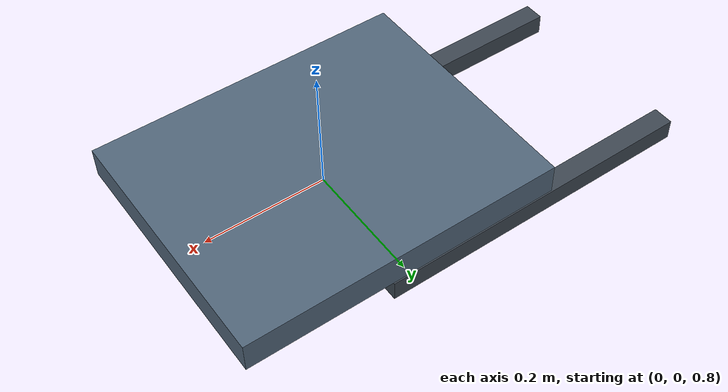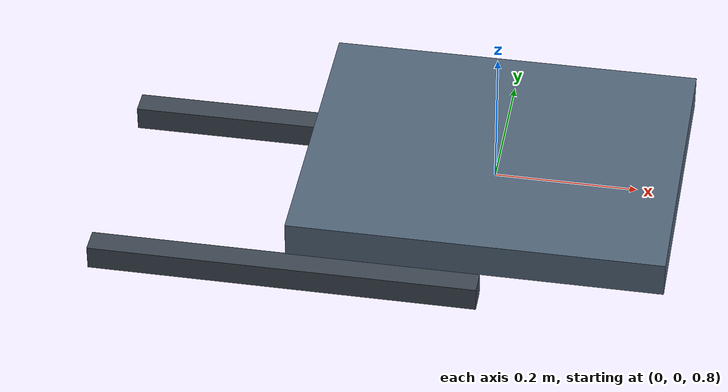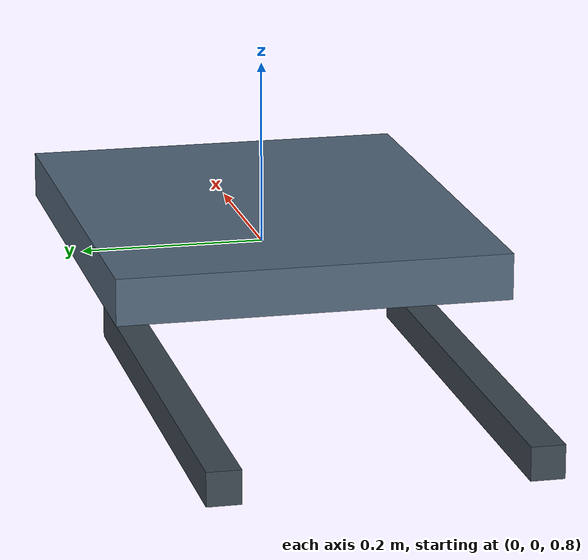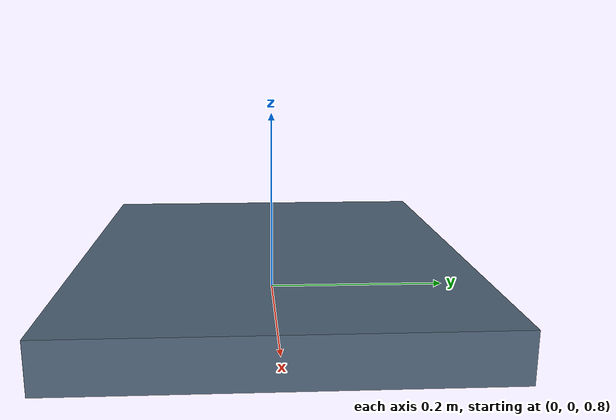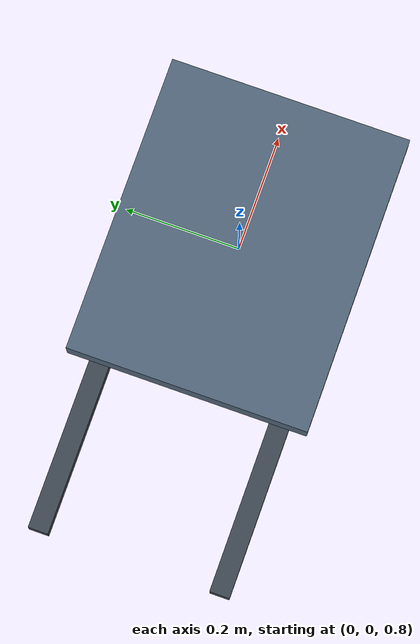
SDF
<?xml version="1.0"?>
<sdf version="1.9">
  <model name="tiago_delivery_payload">
    <static>true</static>
    <link name="tray_and_part">
      <visual name="support_left">
        <pose>-0.275 0.16 0.72 0 0 0</pose>
        <geometry><box><size>0.55 0.035 0.035</size></box></geometry>
        <material><ambient>0.12 0.14 0.16 1</ambient><diffuse>0.24 0.28 0.32 1</diffuse></material>
      </visual>
      <visual name="support_right">
        <pose>-0.275 -0.16 0.72 0 0 0</pose>
        <geometry><box><size>0.55 0.035 0.035</size></box></geometry>
        <material><ambient>0.12 0.14 0.16 1</ambient><diffuse>0.24 0.28 0.32 1</diffuse></material>
      </visual>
      <collision name="tray_collision">
        <pose>0 0 0.82 0 0 0</pose>
        <geometry><box><size>0.52 0.42 0.05</size></box></geometry>
        <surface>
          <friction><ode><mu>1.0</mu><mu2>1.0</mu2></ode></friction>
          <contact><ode><kp>1000000</kp><kd>100</kd></ode></contact>
        </surface>
      </collision>
      <visual name="tray_visual">
        <pose>0 0 0.82 0 0 0</pose>
        <geometry><box><size>0.52 0.42 0.05</size></box></geometry>
        <material><ambient>0.18 0.22 0.26 1</ambient><diffuse>0.32 0.40 0.48 1</diffuse></material>
      </visual>
    </link>
  </model>
</sdf>
